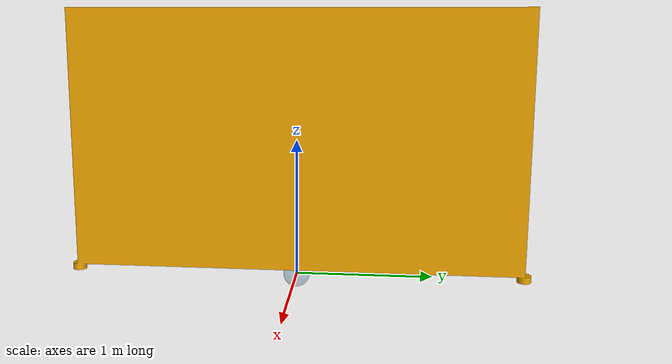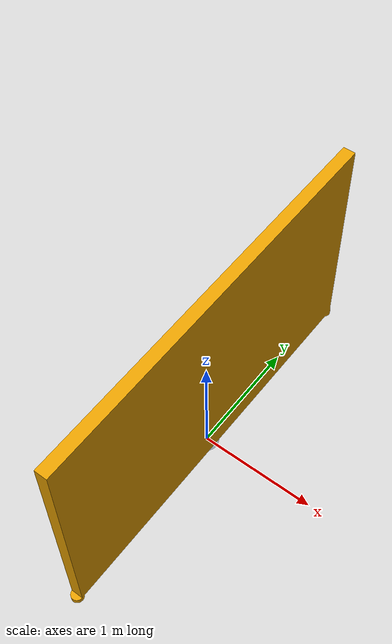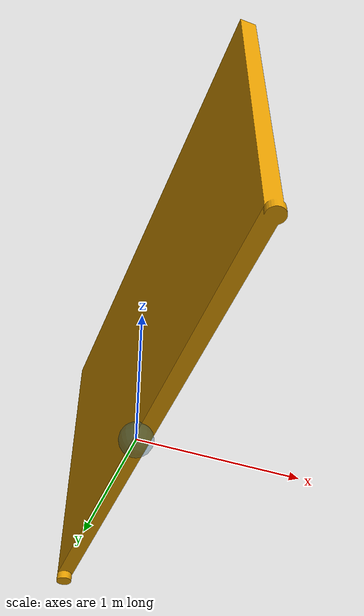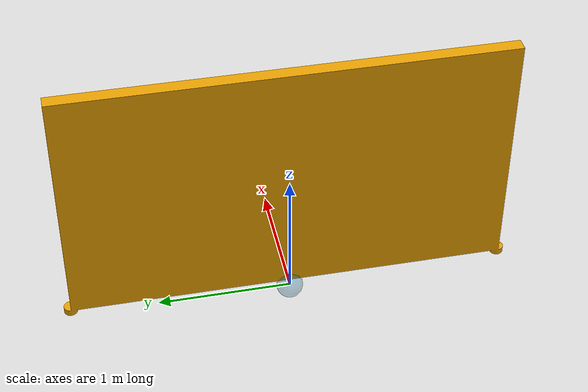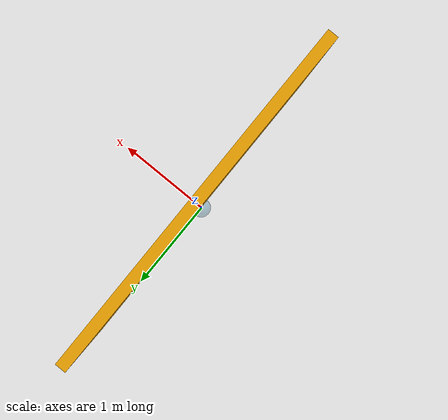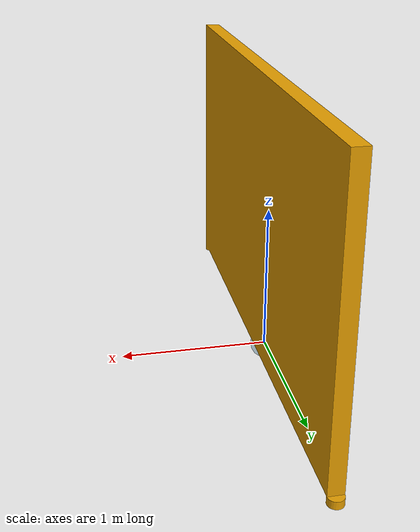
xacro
<?xml version="1.0"?>

<robot name="whiteboard">

    <material name="OA">
        <color rgba="0.101960784 0.42745098 0.588235294 0.333"/>
    </material>

    <gazebo reference="link_base">
        <turnGravityOff>true</turnGravityOff>
    </gazebo>
    <gazebo>
        <plugin name="gazebo_ros_template" filename="libgazebo_ros_template.so"/>
    </gazebo>

    <link name="link_base">
        <visual>
            <origin xyz="0.0 0.0 0.0"/>
            <geometry>
                <sphere radius="0.1"/>
            </geometry>
            <material name="OA"/>
        </visual>
        <visual>
            <origin xyz="0.0 0.0 0.0"/>
            <geometry>
                <mesh filename="package://wai_oa_gazebo/resources/reps/whiteboard/whiteboard.dae"/>
            </geometry>
        </visual>
        <inertial>
            <origin xyz="0.1 0.0 1.0"/>
            <mass value="10.0"/>
            <inertia ixx="10.0" ixy="0.0" ixz="0.0" iyy="10.0" iyz="0.0" izz="10.0"/>
        </inertial>
    </link>

</robot>
